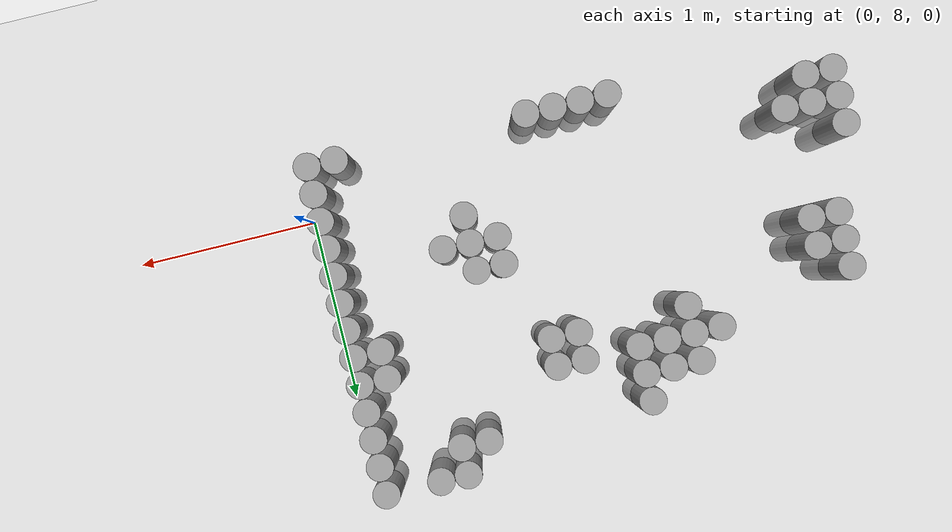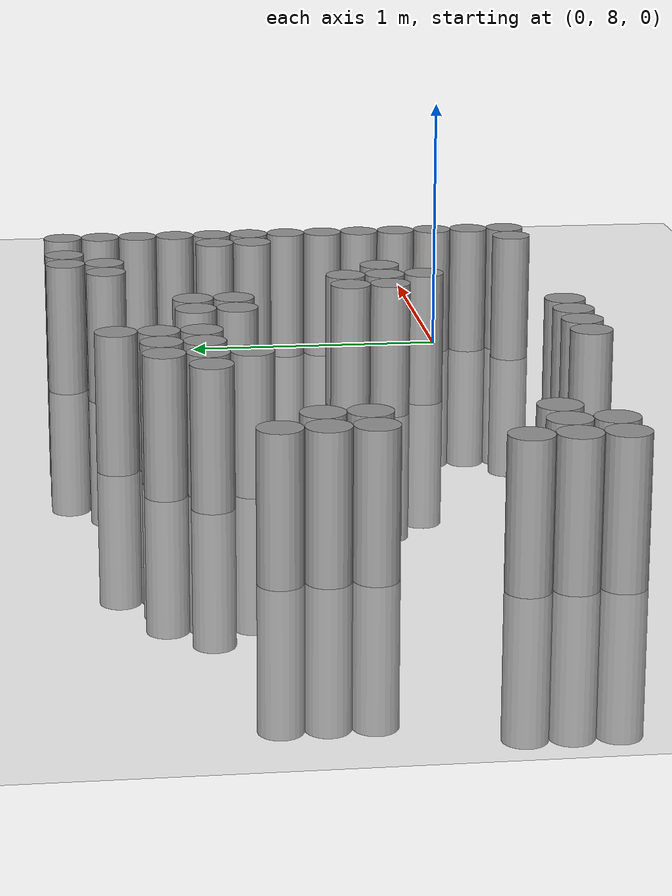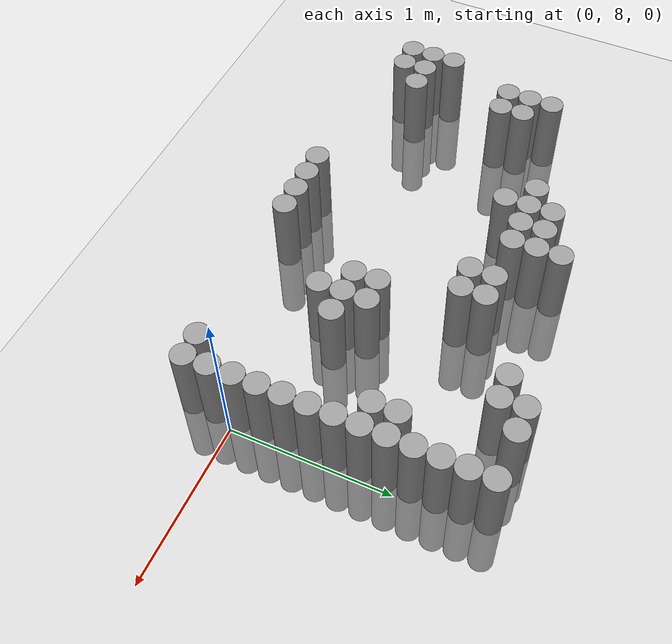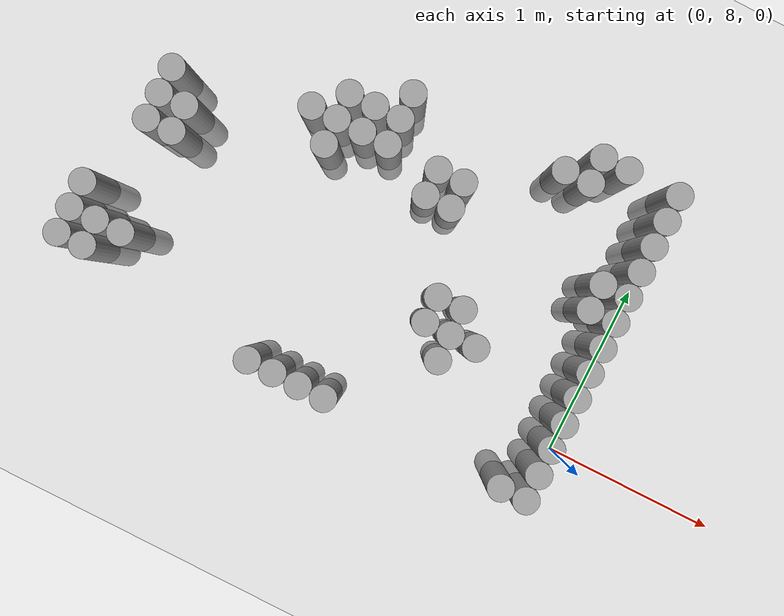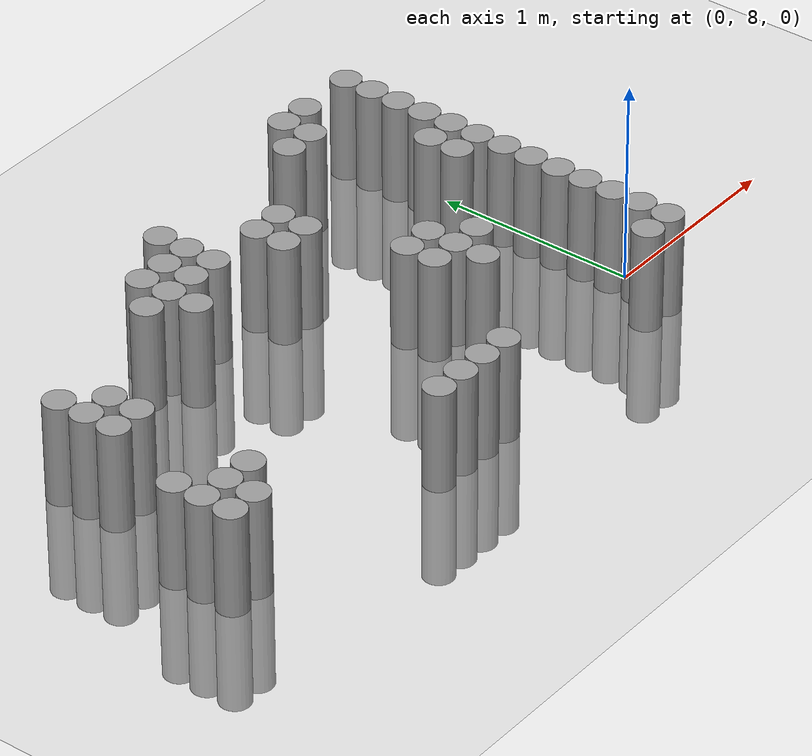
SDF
<sdf version="1.6">
 <world name="default">
  <model name="ground_plane">
   <static>1</static>
   <link name="link">
    <collision name="collision">
     <geometry><plane><normal>0 0 1</normal><size>100 100</size></plane></geometry>
     <surface><friction><ode><mu>100</mu><mu2>50</mu2></ode></friction></surface>
    </collision>
    <visual name="visual">
     <cast_shadows>0</cast_shadows>
     <geometry><plane><normal>0 0 1</normal><size>100 100</size></plane></geometry>
     <material>
      <script><uri>file://media/materials/scripts/gazebo.material</uri><name>Gazebo/Grey</name></script>
     </material>
    </visual>
   </link>
  </model>
  <model name="unit_cylinder_153">
   <pose>-2.925000 7.875000 0.000000 0.000000 0.000000 0.000000</pose>
   <link name="link">
    <inertial>
     <mass>1</mass>
     <inertia><ixx>0.145833</ixx><ixy>0</ixy><ixz>0</ixz><iyy>0.145833</iyy><iyz>0</iyz><izz>0.125</izz></inertia>
    </inertial>
    <collision name="collision">
     <geometry><cylinder><radius>0.075000</radius><length>1</length></cylinder></geometry>
    </collision>
    <visual name="visual">
     <geometry><cylinder><radius>0.075000</radius><length>1</length></cylinder></geometry>
     <material>
      <script><name>Gazebo/Grey</name><uri>file://media/materials/scripts/gazebo.material</uri></script>
     </material>
    </visual>
   </link>
  </model>
  <model name="unit_cylinder_154">
   <pose>-2.925000 8.025000 0.000000 0.000000 0.000000 0.000000</pose>
   <link name="link">
    <inertial>
     <mass>1</mass>
     <inertia><ixx>0.145833</ixx><ixy>0</ixy><ixz>0</ixz><iyy>0.145833</iyy><iyz>0</iyz><izz>0.125</izz></inertia>
    </inertial>
    <collision name="collision">
     <geometry><cylinder><radius>0.075000</radius><length>1</length></cylinder></geometry>
    </collision>
    <visual name="visual">
     <geometry><cylinder><radius>0.075000</radius><length>1</length></cylinder></geometry>
     <material>
      <script><name>Gazebo/Grey</name><uri>file://media/materials/scripts/gazebo.material</uri></script>
     </material>
    </visual>
   </link>
  </model>
  <model name="unit_cylinder_155">
   <pose>-2.925000 8.175000 0.000000 0.000000 0.000000 0.000000</pose>
   <link name="link">
    <inertial>
     <mass>1</mass>
     <inertia><ixx>0.145833</ixx><ixy>0</ixy><ixz>0</ixz><iyy>0.145833</iyy><iyz>0</iyz><izz>0.125</izz></inertia>
    </inertial>
    <collision name="collision">
     <geometry><cylinder><radius>0.075000</radius><length>1</length></cylinder></geometry>
    </collision>
    <visual name="visual">
     <geometry><cylinder><radius>0.075000</radius><length>1</length></cylinder></geometry>
     <material>
      <script><name>Gazebo/Grey</name><uri>file://media/materials/scripts/gazebo.material</uri></script>
     </material>
    </visual>
   </link>
  </model>
  <model name="unit_cylinder_158">
   <pose>-2.775000 7.875000 0.000000 0.000000 0.000000 0.000000</pose>
   <link name="link">
    <inertial>
     <mass>1</mass>
     <inertia><ixx>0.145833</ixx><ixy>0</ixy><ixz>0</ixz><iyy>0.145833</iyy><iyz>0</iyz><izz>0.125</izz></inertia>
    </inertial>
    <collision name="collision">
     <geometry><cylinder><radius>0.075000</radius><length>1</length></cylinder></geometry>
    </collision>
    <visual name="visual">
     <geometry><cylinder><radius>0.075000</radius><length>1</length></cylinder></geometry>
     <material>
      <script><name>Gazebo/Grey</name><uri>file://media/materials/scripts/gazebo.material</uri></script>
     </material>
    </visual>
   </link>
  </model>
  <model name="unit_cylinder_159">
   <pose>-2.775000 8.025000 0.000000 0.000000 0.000000 0.000000</pose>
   <link name="link">
    <inertial>
     <mass>1</mass>
     <inertia><ixx>0.145833</ixx><ixy>0</ixy><ixz>0</ixz><iyy>0.145833</iyy><iyz>0</iyz><izz>0.125</izz></inertia>
    </inertial>
    <collision name="collision">
     <geometry><cylinder><radius>0.075000</radius><length>1</length></cylinder></geometry>
    </collision>
    <visual name="visual">
     <geometry><cylinder><radius>0.075000</radius><length>1</length></cylinder></geometry>
     <material>
      <script><name>Gazebo/Grey</name><uri>file://media/materials/scripts/gazebo.material</uri></script>
     </material>
    </visual>
   </link>
  </model>
  <model name="unit_cylinder_160">
   <pose>-2.775000 8.625000 0.000000 0.000000 0.000000 0.000000</pose>
   <link name="link">
    <inertial>
     <mass>1</mass>
     <inertia><ixx>0.145833</ixx><ixy>0</ixy><ixz>0</ixz><iyy>0.145833</iyy><iyz>0</iyz><izz>0.125</izz></inertia>
    </inertial>
    <collision name="collision">
     <geometry><cylinder><radius>0.075000</radius><length>1</length></cylinder></geometry>
    </collision>
    <visual name="visual">
     <geometry><cylinder><radius>0.075000</radius><length>1</length></cylinder></geometry>
     <material>
      <script><name>Gazebo/Grey</name><uri>file://media/materials/scripts/gazebo.material</uri></script>
     </material>
    </visual>
   </link>
  </model>
  <model name="unit_cylinder_161">
   <pose>-2.775000 8.775000 0.000000 0.000000 0.000000 0.000000</pose>
   <link name="link">
    <inertial>
     <mass>1</mass>
     <inertia><ixx>0.145833</ixx><ixy>0</ixy><ixz>0</ixz><iyy>0.145833</iyy><iyz>0</iyz><izz>0.125</izz></inertia>
    </inertial>
    <collision name="collision">
     <geometry><cylinder><radius>0.075000</radius><length>1</length></cylinder></geometry>
    </collision>
    <visual name="visual">
     <geometry><cylinder><radius>0.075000</radius><length>1</length></cylinder></geometry>
     <material>
      <script><name>Gazebo/Grey</name><uri>file://media/materials/scripts/gazebo.material</uri></script>
     </material>
    </visual>
   </link>
  </model>
  <model name="unit_cylinder_162">
   <pose>-2.775000 8.925000 0.000000 0.000000 0.000000 0.000000</pose>
   <link name="link">
    <inertial>
     <mass>1</mass>
     <inertia><ixx>0.145833</ixx><ixy>0</ixy><ixz>0</ixz><iyy>0.145833</iyy><iyz>0</iyz><izz>0.125</izz></inertia>
    </inertial>
    <collision name="collision">
     <geometry><cylinder><radius>0.075000</radius><length>1</length></cylinder></geometry>
    </collision>
    <visual name="visual">
     <geometry><cylinder><radius>0.075000</radius><length>1</length></cylinder></geometry>
     <material>
      <script><name>Gazebo/Grey</name><uri>file://media/materials/scripts/gazebo.material</uri></script>
     </material>
    </visual>
   </link>
  </model>
  <model name="unit_cylinder_166">
   <pose>-2.625000 8.025000 0.000000 0.000000 0.000000 0.000000</pose>
   <link name="link">
    <inertial>
     <mass>1</mass>
     <inertia><ixx>0.145833</ixx><ixy>0</ixy><ixz>0</ixz><iyy>0.145833</iyy><iyz>0</iyz><izz>0.125</izz></inertia>
    </inertial>
    <collision name="collision">
     <geometry><cylinder><radius>0.075000</radius><length>1</length></cylinder></geometry>
    </collision>
    <visual name="visual">
     <geometry><cylinder><radius>0.075000</radius><length>1</length></cylinder></geometry>
     <material>
      <script><name>Gazebo/Grey</name><uri>file://media/materials/scripts/gazebo.material</uri></script>
     </material>
    </visual>
   </link>
  </model>
  <model name="unit_cylinder_167">
   <pose>-2.625000 8.625000 0.000000 0.000000 0.000000 0.000000</pose>
   <link name="link">
    <inertial>
     <mass>1</mass>
     <inertia><ixx>0.145833</ixx><ixy>0</ixy><ixz>0</ixz><iyy>0.145833</iyy><iyz>0</iyz><izz>0.125</izz></inertia>
    </inertial>
    <collision name="collision">
     <geometry><cylinder><radius>0.075000</radius><length>1</length></cylinder></geometry>
    </collision>
    <visual name="visual">
     <geometry><cylinder><radius>0.075000</radius><length>1</length></cylinder></geometry>
     <material>
      <script><name>Gazebo/Grey</name><uri>file://media/materials/scripts/gazebo.material</uri></script>
     </material>
    </visual>
   </link>
  </model>
  <model name="unit_cylinder_168">
   <pose>-2.625000 8.775000 0.000000 0.000000 0.000000 0.000000</pose>
   <link name="link">
    <inertial>
     <mass>1</mass>
     <inertia><ixx>0.145833</ixx><ixy>0</ixy><ixz>0</ixz><iyy>0.145833</iyy><iyz>0</iyz><izz>0.125</izz></inertia>
    </inertial>
    <collision name="collision">
     <geometry><cylinder><radius>0.075000</radius><length>1</length></cylinder></geometry>
    </collision>
    <visual name="visual">
     <geometry><cylinder><radius>0.075000</radius><length>1</length></cylinder></geometry>
     <material>
      <script><name>Gazebo/Grey</name><uri>file://media/materials/scripts/gazebo.material</uri></script>
     </material>
    </visual>
   </link>
  </model>
  <model name="unit_cylinder_179">
   <pose>-2.025000 9.075000 0.000000 0.000000 0.000000 0.000000</pose>
   <link name="link">
    <inertial>
     <mass>1</mass>
     <inertia><ixx>0.145833</ixx><ixy>0</ixy><ixz>0</ixz><iyy>0.145833</iyy><iyz>0</iyz><izz>0.125</izz></inertia>
    </inertial>
    <collision name="collision">
     <geometry><cylinder><radius>0.075000</radius><length>1</length></cylinder></geometry>
    </collision>
    <visual name="visual">
     <geometry><cylinder><radius>0.075000</radius><length>1</length></cylinder></geometry>
     <material>
      <script><name>Gazebo/Grey</name><uri>file://media/materials/scripts/gazebo.material</uri></script>
     </material>
    </visual>
   </link>
  </model>
  <model name="unit_cylinder_180">
   <pose>-1.875000 8.925000 0.000000 0.000000 0.000000 0.000000</pose>
   <link name="link">
    <inertial>
     <mass>1</mass>
     <inertia><ixx>0.145833</ixx><ixy>0</ixy><ixz>0</ixz><iyy>0.145833</iyy><iyz>0</iyz><izz>0.125</izz></inertia>
    </inertial>
    <collision name="collision">
     <geometry><cylinder><radius>0.075000</radius><length>1</length></cylinder></geometry>
    </collision>
    <visual name="visual">
     <geometry><cylinder><radius>0.075000</radius><length>1</length></cylinder></geometry>
     <material>
      <script><name>Gazebo/Grey</name><uri>file://media/materials/scripts/gazebo.material</uri></script>
     </material>
    </visual>
   </link>
  </model>
  <model name="unit_cylinder_181">
   <pose>-1.875000 9.075000 0.000000 0.000000 0.000000 0.000000</pose>
   <link name="link">
    <inertial>
     <mass>1</mass>
     <inertia><ixx>0.145833</ixx><ixy>0</ixy><ixz>0</ixz><iyy>0.145833</iyy><iyz>0</iyz><izz>0.125</izz></inertia>
    </inertial>
    <collision name="collision">
     <geometry><cylinder><radius>0.075000</radius><length>1</length></cylinder></geometry>
    </collision>
    <visual name="visual">
     <geometry><cylinder><radius>0.075000</radius><length>1</length></cylinder></geometry>
     <material>
      <script><name>Gazebo/Grey</name><uri>file://media/materials/scripts/gazebo.material</uri></script>
     </material>
    </visual>
   </link>
  </model>
  <model name="unit_cylinder_182">
   <pose>-1.875000 9.225000 0.000000 0.000000 0.000000 0.000000</pose>
   <link name="link">
    <inertial>
     <mass>1</mass>
     <inertia><ixx>0.145833</ixx><ixy>0</ixy><ixz>0</ixz><iyy>0.145833</iyy><iyz>0</iyz><izz>0.125</izz></inertia>
    </inertial>
    <collision name="collision">
     <geometry><cylinder><radius>0.075000</radius><length>1</length></cylinder></geometry>
    </collision>
    <visual name="visual">
     <geometry><cylinder><radius>0.075000</radius><length>1</length></cylinder></geometry>
     <material>
      <script><name>Gazebo/Grey</name><uri>file://media/materials/scripts/gazebo.material</uri></script>
     </material>
    </visual>
   </link>
  </model>
  <model name="unit_cylinder_183">
   <pose>-1.725000 7.725000 0.000000 0.000000 0.000000 0.000000</pose>
   <link name="link">
    <inertial>
     <mass>1</mass>
     <inertia><ixx>0.145833</ixx><ixy>0</ixy><ixz>0</ixz><iyy>0.145833</iyy><iyz>0</iyz><izz>0.125</izz></inertia>
    </inertial>
    <collision name="collision">
     <geometry><cylinder><radius>0.075000</radius><length>1</length></cylinder></geometry>
    </collision>
    <visual name="visual">
     <geometry><cylinder><radius>0.075000</radius><length>1</length></cylinder></geometry>
     <material>
      <script><name>Gazebo/Grey</name><uri>file://media/materials/scripts/gazebo.material</uri></script>
     </material>
    </visual>
   </link>
  </model>
  <model name="unit_cylinder_184">
   <pose>-1.725000 9.075000 0.000000 0.000000 0.000000 0.000000</pose>
   <link name="link">
    <inertial>
     <mass>1</mass>
     <inertia><ixx>0.145833</ixx><ixy>0</ixy><ixz>0</ixz><iyy>0.145833</iyy><iyz>0</iyz><izz>0.125</izz></inertia>
    </inertial>
    <collision name="collision">
     <geometry><cylinder><radius>0.075000</radius><length>1</length></cylinder></geometry>
    </collision>
    <visual name="visual">
     <geometry><cylinder><radius>0.075000</radius><length>1</length></cylinder></geometry>
     <material>
      <script><name>Gazebo/Grey</name><uri>file://media/materials/scripts/gazebo.material</uri></script>
     </material>
    </visual>
   </link>
  </model>
  <model name="unit_cylinder_185">
   <pose>-1.725000 9.225000 0.000000 0.000000 0.000000 0.000000</pose>
   <link name="link">
    <inertial>
     <mass>1</mass>
     <inertia><ixx>0.145833</ixx><ixy>0</ixy><ixz>0</ixz><iyy>0.145833</iyy><iyz>0</iyz><izz>0.125</izz></inertia>
    </inertial>
    <collision name="collision">
     <geometry><cylinder><radius>0.075000</radius><length>1</length></cylinder></geometry>
    </collision>
    <visual name="visual">
     <geometry><cylinder><radius>0.075000</radius><length>1</length></cylinder></geometry>
     <material>
      <script><name>Gazebo/Grey</name><uri>file://media/materials/scripts/gazebo.material</uri></script>
     </material>
    </visual>
   </link>
  </model>
  <model name="unit_cylinder_187">
   <pose>-1.575000 7.725000 0.000000 0.000000 0.000000 0.000000</pose>
   <link name="link">
    <inertial>
     <mass>1</mass>
     <inertia><ixx>0.145833</ixx><ixy>0</ixy><ixz>0</ixz><iyy>0.145833</iyy><iyz>0</iyz><izz>0.125</izz></inertia>
    </inertial>
    <collision name="collision">
     <geometry><cylinder><radius>0.075000</radius><length>1</length></cylinder></geometry>
    </collision>
    <visual name="visual">
     <geometry><cylinder><radius>0.075000</radius><length>1</length></cylinder></geometry>
     <material>
      <script><name>Gazebo/Grey</name><uri>file://media/materials/scripts/gazebo.material</uri></script>
     </material>
    </visual>
   </link>
  </model>
  <model name="unit_cylinder_188">
   <pose>-1.575000 9.075000 0.000000 0.000000 0.000000 0.000000</pose>
   <link name="link">
    <inertial>
     <mass>1</mass>
     <inertia><ixx>0.145833</ixx><ixy>0</ixy><ixz>0</ixz><iyy>0.145833</iyy><iyz>0</iyz><izz>0.125</izz></inertia>
    </inertial>
    <collision name="collision">
     <geometry><cylinder><radius>0.075000</radius><length>1</length></cylinder></geometry>
    </collision>
    <visual name="visual">
     <geometry><cylinder><radius>0.075000</radius><length>1</length></cylinder></geometry>
     <material>
      <script><name>Gazebo/Grey</name><uri>file://media/materials/scripts/gazebo.material</uri></script>
     </material>
    </visual>
   </link>
  </model>
  <model name="unit_cylinder_189">
   <pose>-1.575000 9.225000 0.000000 0.000000 0.000000 0.000000</pose>
   <link name="link">
    <inertial>
     <mass>1</mass>
     <inertia><ixx>0.145833</ixx><ixy>0</ixy><ixz>0</ixz><iyy>0.145833</iyy><iyz>0</iyz><izz>0.125</izz></inertia>
    </inertial>
    <collision name="collision">
     <geometry><cylinder><radius>0.075000</radius><length>1</length></cylinder></geometry>
    </collision>
    <visual name="visual">
     <geometry><cylinder><radius>0.075000</radius><length>1</length></cylinder></geometry>
     <material>
      <script><name>Gazebo/Grey</name><uri>file://media/materials/scripts/gazebo.material</uri></script>
     </material>
    </visual>
   </link>
  </model>
  <model name="unit_cylinder_190">
   <pose>-1.575000 9.375000 0.000000 0.000000 0.000000 0.000000</pose>
   <link name="link">
    <inertial>
     <mass>1</mass>
     <inertia><ixx>0.145833</ixx><ixy>0</ixy><ixz>0</ixz><iyy>0.145833</iyy><iyz>0</iyz><izz>0.125</izz></inertia>
    </inertial>
    <collision name="collision">
     <geometry><cylinder><radius>0.075000</radius><length>1</length></cylinder></geometry>
    </collision>
    <visual name="visual">
     <geometry><cylinder><radius>0.075000</radius><length>1</length></cylinder></geometry>
     <material>
      <script><name>Gazebo/Grey</name><uri>file://media/materials/scripts/gazebo.material</uri></script>
     </material>
    </visual>
   </link>
  </model>
  <model name="unit_cylinder_193">
   <pose>-1.425000 7.725000 0.000000 0.000000 0.000000 0.000000</pose>
   <link name="link">
    <inertial>
     <mass>1</mass>
     <inertia><ixx>0.145833</ixx><ixy>0</ixy><ixz>0</ixz><iyy>0.145833</iyy><iyz>0</iyz><izz>0.125</izz></inertia>
    </inertial>
    <collision name="collision">
     <geometry><cylinder><radius>0.075000</radius><length>1</length></cylinder></geometry>
    </collision>
    <visual name="visual">
     <geometry><cylinder><radius>0.075000</radius><length>1</length></cylinder></geometry>
     <material>
      <script><name>Gazebo/Grey</name><uri>file://media/materials/scripts/gazebo.material</uri></script>
     </material>
    </visual>
   </link>
  </model>
  <model name="unit_cylinder_198">
   <pose>-1.275000 7.725000 0.000000 0.000000 0.000000 0.000000</pose>
   <link name="link">
    <inertial>
     <mass>1</mass>
     <inertia><ixx>0.145833</ixx><ixy>0</ixy><ixz>0</ixz><iyy>0.145833</iyy><iyz>0</iyz><izz>0.125</izz></inertia>
    </inertial>
    <collision name="collision">
     <geometry><cylinder><radius>0.075000</radius><length>1</length></cylinder></geometry>
    </collision>
    <visual name="visual">
     <geometry><cylinder><radius>0.075000</radius><length>1</length></cylinder></geometry>
     <material>
      <script><name>Gazebo/Grey</name><uri>file://media/materials/scripts/gazebo.material</uri></script>
     </material>
    </visual>
   </link>
  </model>
  <model name="unit_cylinder_199">
   <pose>-1.275000 8.925000 0.000000 0.000000 0.000000 0.000000</pose>
   <link name="link">
    <inertial>
     <mass>1</mass>
     <inertia><ixx>0.145833</ixx><ixy>0</ixy><ixz>0</ixz><iyy>0.145833</iyy><iyz>0</iyz><izz>0.125</izz></inertia>
    </inertial>
    <collision name="collision">
     <geometry><cylinder><radius>0.075000</radius><length>1</length></cylinder></geometry>
    </collision>
    <visual name="visual">
     <geometry><cylinder><radius>0.075000</radius><length>1</length></cylinder></geometry>
     <material>
      <script><name>Gazebo/Grey</name><uri>file://media/materials/scripts/gazebo.material</uri></script>
     </material>
    </visual>
   </link>
  </model>
  <model name="unit_cylinder_200">
   <pose>-1.275000 9.075000 0.000000 0.000000 0.000000 0.000000</pose>
   <link name="link">
    <inertial>
     <mass>1</mass>
     <inertia><ixx>0.145833</ixx><ixy>0</ixy><ixz>0</ixz><iyy>0.145833</iyy><iyz>0</iyz><izz>0.125</izz></inertia>
    </inertial>
    <collision name="collision">
     <geometry><cylinder><radius>0.075000</radius><length>1</length></cylinder></geometry>
    </collision>
    <visual name="visual">
     <geometry><cylinder><radius>0.075000</radius><length>1</length></cylinder></geometry>
     <material>
      <script><name>Gazebo/Grey</name><uri>file://media/materials/scripts/gazebo.material</uri></script>
     </material>
    </visual>
   </link>
  </model>
  <model name="unit_cylinder_206">
   <pose>-1.125000 8.925000 0.000000 0.000000 0.000000 0.000000</pose>
   <link name="link">
    <inertial>
     <mass>1</mass>
     <inertia><ixx>0.145833</ixx><ixy>0</ixy><ixz>0</ixz><iyy>0.145833</iyy><iyz>0</iyz><izz>0.125</izz></inertia>
    </inertial>
    <collision name="collision">
     <geometry><cylinder><radius>0.075000</radius><length>1</length></cylinder></geometry>
    </collision>
    <visual name="visual">
     <geometry><cylinder><radius>0.075000</radius><length>1</length></cylinder></geometry>
     <material>
      <script><name>Gazebo/Grey</name><uri>file://media/materials/scripts/gazebo.material</uri></script>
     </material>
    </visual>
   </link>
  </model>
  <model name="unit_cylinder_207">
   <pose>-1.125000 9.075000 0.000000 0.000000 0.000000 0.000000</pose>
   <link name="link">
    <inertial>
     <mass>1</mass>
     <inertia><ixx>0.145833</ixx><ixy>0</ixy><ixz>0</ixz><iyy>0.145833</iyy><iyz>0</iyz><izz>0.125</izz></inertia>
    </inertial>
    <collision name="collision">
     <geometry><cylinder><radius>0.075000</radius><length>1</length></cylinder></geometry>
    </collision>
    <visual name="visual">
     <geometry><cylinder><radius>0.075000</radius><length>1</length></cylinder></geometry>
     <material>
      <script><name>Gazebo/Grey</name><uri>file://media/materials/scripts/gazebo.material</uri></script>
     </material>
    </visual>
   </link>
  </model>
  <model name="unit_cylinder_213">
   <pose>-0.975000 8.325000 0.000000 0.000000 0.000000 0.000000</pose>
   <link name="link">
    <inertial>
     <mass>1</mass>
     <inertia><ixx>0.145833</ixx><ixy>0</ixy><ixz>0</ixz><iyy>0.145833</iyy><iyz>0</iyz><izz>0.125</izz></inertia>
    </inertial>
    <collision name="collision">
     <geometry><cylinder><radius>0.075000</radius><length>1</length></cylinder></geometry>
    </collision>
    <visual name="visual">
     <geometry><cylinder><radius>0.075000</radius><length>1</length></cylinder></geometry>
     <material>
      <script><name>Gazebo/Grey</name><uri>file://media/materials/scripts/gazebo.material</uri></script>
     </material>
    </visual>
   </link>
  </model>
  <model name="unit_cylinder_214">
   <pose>-0.975000 8.475000 0.000000 0.000000 0.000000 0.000000</pose>
   <link name="link">
    <inertial>
     <mass>1</mass>
     <inertia><ixx>0.145833</ixx><ixy>0</ixy><ixz>0</ixz><iyy>0.145833</iyy><iyz>0</iyz><izz>0.125</izz></inertia>
    </inertial>
    <collision name="collision">
     <geometry><cylinder><radius>0.075000</radius><length>1</length></cylinder></geometry>
    </collision>
    <visual name="visual">
     <geometry><cylinder><radius>0.075000</radius><length>1</length></cylinder></geometry>
     <material>
      <script><name>Gazebo/Grey</name><uri>file://media/materials/scripts/gazebo.material</uri></script>
     </material>
    </visual>
   </link>
  </model>
  <model name="unit_cylinder_217">
   <pose>-0.825000 8.175000 0.000000 0.000000 0.000000 0.000000</pose>
   <link name="link">
    <inertial>
     <mass>1</mass>
     <inertia><ixx>0.145833</ixx><ixy>0</ixy><ixz>0</ixz><iyy>0.145833</iyy><iyz>0</iyz><izz>0.125</izz></inertia>
    </inertial>
    <collision name="collision">
     <geometry><cylinder><radius>0.075000</radius><length>1</length></cylinder></geometry>
    </collision>
    <visual name="visual">
     <geometry><cylinder><radius>0.075000</radius><length>1</length></cylinder></geometry>
     <material>
      <script><name>Gazebo/Grey</name><uri>file://media/materials/scripts/gazebo.material</uri></script>
     </material>
    </visual>
   </link>
  </model>
  <model name="unit_cylinder_218">
   <pose>-0.825000 8.325000 0.000000 0.000000 0.000000 0.000000</pose>
   <link name="link">
    <inertial>
     <mass>1</mass>
     <inertia><ixx>0.145833</ixx><ixy>0</ixy><ixz>0</ixz><iyy>0.145833</iyy><iyz>0</iyz><izz>0.125</izz></inertia>
    </inertial>
    <collision name="collision">
     <geometry><cylinder><radius>0.075000</radius><length>1</length></cylinder></geometry>
    </collision>
    <visual name="visual">
     <geometry><cylinder><radius>0.075000</radius><length>1</length></cylinder></geometry>
     <material>
      <script><name>Gazebo/Grey</name><uri>file://media/materials/scripts/gazebo.material</uri></script>
     </material>
    </visual>
   </link>
  </model>
  <model name="unit_cylinder_219">
   <pose>-0.825000 8.475000 0.000000 0.000000 0.000000 0.000000</pose>
   <link name="link">
    <inertial>
     <mass>1</mass>
     <inertia><ixx>0.145833</ixx><ixy>0</ixy><ixz>0</ixz><iyy>0.145833</iyy><iyz>0</iyz><izz>0.125</izz></inertia>
    </inertial>
    <collision name="collision">
     <geometry><cylinder><radius>0.075000</radius><length>1</length></cylinder></geometry>
    </collision>
    <visual name="visual">
     <geometry><cylinder><radius>0.075000</radius><length>1</length></cylinder></geometry>
     <material>
      <script><name>Gazebo/Grey</name><uri>file://media/materials/scripts/gazebo.material</uri></script>
     </material>
    </visual>
   </link>
  </model>
  <model name="unit_cylinder_221">
   <pose>-0.675000 8.325000 0.000000 0.000000 0.000000 0.000000</pose>
   <link name="link">
    <inertial>
     <mass>1</mass>
     <inertia><ixx>0.145833</ixx><ixy>0</ixy><ixz>0</ixz><iyy>0.145833</iyy><iyz>0</iyz><izz>0.125</izz></inertia>
    </inertial>
    <collision name="collision">
     <geometry><cylinder><radius>0.075000</radius><length>1</length></cylinder></geometry>
    </collision>
    <visual name="visual">
     <geometry><cylinder><radius>0.075000</radius><length>1</length></cylinder></geometry>
     <material>
      <script><name>Gazebo/Grey</name><uri>file://media/materials/scripts/gazebo.material</uri></script>
     </material>
    </visual>
   </link>
  </model>
  <model name="unit_cylinder_222">
   <pose>-0.675000 9.375000 0.000000 0.000000 0.000000 0.000000</pose>
   <link name="link">
    <inertial>
     <mass>1</mass>
     <inertia><ixx>0.145833</ixx><ixy>0</ixy><ixz>0</ixz><iyy>0.145833</iyy><iyz>0</iyz><izz>0.125</izz></inertia>
    </inertial>
    <collision name="collision">
     <geometry><cylinder><radius>0.075000</radius><length>1</length></cylinder></geometry>
    </collision>
    <visual name="visual">
     <geometry><cylinder><radius>0.075000</radius><length>1</length></cylinder></geometry>
     <material>
      <script><name>Gazebo/Grey</name><uri>file://media/materials/scripts/gazebo.material</uri></script>
     </material>
    </visual>
   </link>
  </model>
  <model name="unit_cylinder_225">
   <pose>-0.525000 9.375000 0.000000 0.000000 0.000000 0.000000</pose>
   <link name="link">
    <inertial>
     <mass>1</mass>
     <inertia><ixx>0.145833</ixx><ixy>0</ixy><ixz>0</ixz><iyy>0.145833</iyy><iyz>0</iyz><izz>0.125</izz></inertia>
    </inertial>
    <collision name="collision">
     <geometry><cylinder><radius>0.075000</radius><length>1</length></cylinder></geometry>
    </collision>
    <visual name="visual">
     <geometry><cylinder><radius>0.075000</radius><length>1</length></cylinder></geometry>
     <material>
      <script><name>Gazebo/Grey</name><uri>file://media/materials/scripts/gazebo.material</uri></script>
     </material>
    </visual>
   </link>
  </model>
  <model name="unit_cylinder_226">
   <pose>-0.525000 9.525000 0.000000 0.000000 0.000000 0.000000</pose>
   <link name="link">
    <inertial>
     <mass>1</mass>
     <inertia><ixx>0.145833</ixx><ixy>0</ixy><ixz>0</ixz><iyy>0.145833</iyy><iyz>0</iyz><izz>0.125</izz></inertia>
    </inertial>
    <collision name="collision">
     <geometry><cylinder><radius>0.075000</radius><length>1</length></cylinder></geometry>
    </collision>
    <visual name="visual">
     <geometry><cylinder><radius>0.075000</radius><length>1</length></cylinder></geometry>
     <material>
      <script><name>Gazebo/Grey</name><uri>file://media/materials/scripts/gazebo.material</uri></script>
     </material>
    </visual>
   </link>
  </model>
  <model name="unit_cylinder_228">
   <pose>-0.375000 9.525000 0.000000 0.000000 0.000000 0.000000</pose>
   <link name="link">
    <inertial>
     <mass>1</mass>
     <inertia><ixx>0.145833</ixx><ixy>0</ixy><ixz>0</ixz><iyy>0.145833</iyy><iyz>0</iyz><izz>0.125</izz></inertia>
    </inertial>
    <collision name="collision">
     <geometry><cylinder><radius>0.075000</radius><length>1</length></cylinder></geometry>
    </collision>
    <visual name="visual">
     <geometry><cylinder><radius>0.075000</radius><length>1</length></cylinder></geometry>
     <material>
      <script><name>Gazebo/Grey</name><uri>file://media/materials/scripts/gazebo.material</uri></script>
     </material>
    </visual>
   </link>
  </model>
  <model name="unit_cylinder_236">
   <pose>-0.225000 7.725000 0.000000 0.000000 0.000000 0.000000</pose>
   <link name="link">
    <inertial>
     <mass>1</mass>
     <inertia><ixx>0.145833</ixx><ixy>0</ixy><ixz>0</ixz><iyy>0.145833</iyy><iyz>0</iyz><izz>0.125</izz></inertia>
    </inertial>
    <collision name="collision">
     <geometry><cylinder><radius>0.075000</radius><length>1</length></cylinder></geometry>
    </collision>
    <visual name="visual">
     <geometry><cylinder><radius>0.075000</radius><length>1</length></cylinder></geometry>
     <material>
      <script><name>Gazebo/Grey</name><uri>file://media/materials/scripts/gazebo.material</uri></script>
     </material>
    </visual>
   </link>
  </model>
  <model name="unit_cylinder_237">
   <pose>-0.225000 8.775000 0.000000 0.000000 0.000000 0.000000</pose>
   <link name="link">
    <inertial>
     <mass>1</mass>
     <inertia><ixx>0.145833</ixx><ixy>0</ixy><ixz>0</ixz><iyy>0.145833</iyy><iyz>0</iyz><izz>0.125</izz></inertia>
    </inertial>
    <collision name="collision">
     <geometry><cylinder><radius>0.075000</radius><length>1</length></cylinder></geometry>
    </collision>
    <visual name="visual">
     <geometry><cylinder><radius>0.075000</radius><length>1</length></cylinder></geometry>
     <material>
      <script><name>Gazebo/Grey</name><uri>file://media/materials/scripts/gazebo.material</uri></script>
     </material>
    </visual>
   </link>
  </model>
  <model name="unit_cylinder_238">
   <pose>-0.225000 8.925000 0.000000 0.000000 0.000000 0.000000</pose>
   <link name="link">
    <inertial>
     <mass>1</mass>
     <inertia><ixx>0.145833</ixx><ixy>0</ixy><ixz>0</ixz><iyy>0.145833</iyy><iyz>0</iyz><izz>0.125</izz></inertia>
    </inertial>
    <collision name="collision">
     <geometry><cylinder><radius>0.075000</radius><length>1</length></cylinder></geometry>
    </collision>
    <visual name="visual">
     <geometry><cylinder><radius>0.075000</radius><length>1</length></cylinder></geometry>
     <material>
      <script><name>Gazebo/Grey</name><uri>file://media/materials/scripts/gazebo.material</uri></script>
     </material>
    </visual>
   </link>
  </model>
  <model name="unit_cylinder_256">
   <pose>-0.075000 7.725000 0.000000 0.000000 0.000000 0.000000</pose>
   <link name="link">
    <inertial>
     <mass>1</mass>
     <inertia><ixx>0.145833</ixx><ixy>0</ixy><ixz>0</ixz><iyy>0.145833</iyy><iyz>0</iyz><izz>0.125</izz></inertia>
    </inertial>
    <collision name="collision">
     <geometry><cylinder><radius>0.075000</radius><length>1</length></cylinder></geometry>
    </collision>
    <visual name="visual">
     <geometry><cylinder><radius>0.075000</radius><length>1</length></cylinder></geometry>
     <material>
      <script><name>Gazebo/Grey</name><uri>file://media/materials/scripts/gazebo.material</uri></script>
     </material>
    </visual>
   </link>
  </model>
  <model name="unit_cylinder_257">
   <pose>-0.075000 7.875000 0.000000 0.000000 0.000000 0.000000</pose>
   <link name="link">
    <inertial>
     <mass>1</mass>
     <inertia><ixx>0.145833</ixx><ixy>0</ixy><ixz>0</ixz><iyy>0.145833</iyy><iyz>0</iyz><izz>0.125</izz></inertia>
    </inertial>
    <collision name="collision">
     <geometry><cylinder><radius>0.075000</radius><length>1</length></cylinder></geometry>
    </collision>
    <visual name="visual">
     <geometry><cylinder><radius>0.075000</radius><length>1</length></cylinder></geometry>
     <material>
      <script><name>Gazebo/Grey</name><uri>file://media/materials/scripts/gazebo.material</uri></script>
     </material>
    </visual>
   </link>
  </model>
  <model name="unit_cylinder_258">
   <pose>-0.075000 8.025000 0.000000 0.000000 0.000000 0.000000</pose>
   <link name="link">
    <inertial>
     <mass>1</mass>
     <inertia><ixx>0.145833</ixx><ixy>0</ixy><ixz>0</ixz><iyy>0.145833</iyy><iyz>0</iyz><izz>0.125</izz></inertia>
    </inertial>
    <collision name="collision">
     <geometry><cylinder><radius>0.075000</radius><length>1</length></cylinder></geometry>
    </collision>
    <visual name="visual">
     <geometry><cylinder><radius>0.075000</radius><length>1</length></cylinder></geometry>
     <material>
      <script><name>Gazebo/Grey</name><uri>file://media/materials/scripts/gazebo.material</uri></script>
     </material>
    </visual>
   </link>
  </model>
  <model name="unit_cylinder_259">
   <pose>-0.075000 8.175000 0.000000 0.000000 0.000000 0.000000</pose>
   <link name="link">
    <inertial>
     <mass>1</mass>
     <inertia><ixx>0.145833</ixx><ixy>0</ixy><ixz>0</ixz><iyy>0.145833</iyy><iyz>0</iyz><izz>0.125</izz></inertia>
    </inertial>
    <collision name="collision">
     <geometry><cylinder><radius>0.075000</radius><length>1</length></cylinder></geometry>
    </collision>
    <visual name="visual">
     <geometry><cylinder><radius>0.075000</radius><length>1</length></cylinder></geometry>
     <material>
      <script><name>Gazebo/Grey</name><uri>file://media/materials/scripts/gazebo.material</uri></script>
     </material>
    </visual>
   </link>
  </model>
  <model name="unit_cylinder_260">
   <pose>-0.075000 8.325000 0.000000 0.000000 0.000000 0.000000</pose>
   <link name="link">
    <inertial>
     <mass>1</mass>
     <inertia><ixx>0.145833</ixx><ixy>0</ixy><ixz>0</ixz><iyy>0.145833</iyy><iyz>0</iyz><izz>0.125</izz></inertia>
    </inertial>
    <collision name="collision">
     <geometry><cylinder><radius>0.075000</radius><length>1</length></cylinder></geometry>
    </collision>
    <visual name="visual">
     <geometry><cylinder><radius>0.075000</radius><length>1</length></cylinder></geometry>
     <material>
      <script><name>Gazebo/Grey</name><uri>file://media/materials/scripts/gazebo.material</uri></script>
     </material>
    </visual>
   </link>
  </model>
  <model name="unit_cylinder_261">
   <pose>-0.075000 8.475000 0.000000 0.000000 0.000000 0.000000</pose>
   <link name="link">
    <inertial>
     <mass>1</mass>
     <inertia><ixx>0.145833</ixx><ixy>0</ixy><ixz>0</ixz><iyy>0.145833</iyy><iyz>0</iyz><izz>0.125</izz></inertia>
    </inertial>
    <collision name="collision">
     <geometry><cylinder><radius>0.075000</radius><length>1</length></cylinder></geometry>
    </collision>
    <visual name="visual">
     <geometry><cylinder><radius>0.075000</radius><length>1</length></cylinder></geometry>
     <material>
      <script><name>Gazebo/Grey</name><uri>file://media/materials/scripts/gazebo.material</uri></script>
     </material>
    </visual>
   </link>
  </model>
  <model name="unit_cylinder_262">
   <pose>-0.075000 8.625000 0.000000 0.000000 0.000000 0.000000</pose>
   <link name="link">
    <inertial>
     <mass>1</mass>
     <inertia><ixx>0.145833</ixx><ixy>0</ixy><ixz>0</ixz><iyy>0.145833</iyy><iyz>0</iyz><izz>0.125</izz></inertia>
    </inertial>
    <collision name="collision">
     <geometry><cylinder><radius>0.075000</radius><length>1</length></cylinder></geometry>
    </collision>
    <visual name="visual">
     <geometry><cylinder><radius>0.075000</radius><length>1</length></cylinder></geometry>
     <material>
      <script><name>Gazebo/Grey</name><uri>file://media/materials/scripts/gazebo.material</uri></script>
     </material>
    </visual>
   </link>
  </model>
  <model name="unit_cylinder_263">
   <pose>-0.075000 8.775000 0.000000 0.000000 0.000000 0.000000</pose>
   <link name="link">
    <inertial>
     <mass>1</mass>
     <inertia><ixx>0.145833</ixx><ixy>0</ixy><ixz>0</ixz><iyy>0.145833</iyy><iyz>0</iyz><izz>0.125</izz></inertia>
    </inertial>
    <collision name="collision">
     <geometry><cylinder><radius>0.075000</radius><length>1</length></cylinder></geometry>
    </collision>
    <visual name="visual">
     <geometry><cylinder><radius>0.075000</radius><length>1</length></cylinder></geometry>
     <material>
      <script><name>Gazebo/Grey</name><uri>file://media/materials/scripts/gazebo.material</uri></script>
     </material>
    </visual>
   </link>
  </model>
  <model name="unit_cylinder_264">
   <pose>-0.075000 8.925000 0.000000 0.000000 0.000000 0.000000</pose>
   <link name="link">
    <inertial>
     <mass>1</mass>
     <inertia><ixx>0.145833</ixx><ixy>0</ixy><ixz>0</ixz><iyy>0.145833</iyy><iyz>0</iyz><izz>0.125</izz></inertia>
    </inertial>
    <collision name="collision">
     <geometry><cylinder><radius>0.075000</radius><length>1</length></cylinder></geometry>
    </collision>
    <visual name="visual">
     <geometry><cylinder><radius>0.075000</radius><length>1</length></cylinder></geometry>
     <material>
      <script><name>Gazebo/Grey</name><uri>file://media/materials/scripts/gazebo.material</uri></script>
     </material>
    </visual>
   </link>
  </model>
  <model name="unit_cylinder_265">
   <pose>-0.075000 9.075000 0.000000 0.000000 0.000000 0.000000</pose>
   <link name="link">
    <inertial>
     <mass>1</mass>
     <inertia><ixx>0.145833</ixx><ixy>0</ixy><ixz>0</ixz><iyy>0.145833</iyy><iyz>0</iyz><izz>0.125</izz></inertia>
    </inertial>
    <collision name="collision">
     <geometry><cylinder><radius>0.075000</radius><length>1</length></cylinder></geometry>
    </collision>
    <visual name="visual">
     <geometry><cylinder><radius>0.075000</radius><length>1</length></cylinder></geometry>
     <material>
      <script><name>Gazebo/Grey</name><uri>file://media/materials/scripts/gazebo.material</uri></script>
     </material>
    </visual>
   </link>
  </model>
  <model name="unit_cylinder_266">
   <pose>-0.075000 9.225000 0.000000 0.000000 0.000000 0.000000</pose>
   <link name="link">
    <inertial>
     <mass>1</mass>
     <inertia><ixx>0.145833</ixx><ixy>0</ixy><ixz>0</ixz><iyy>0.145833</iyy><iyz>0</iyz><izz>0.125</izz></inertia>
    </inertial>
    <collision name="collision">
     <geometry><cylinder><radius>0.075000</radius><length>1</length></cylinder></geometry>
    </collision>
    <visual name="visual">
     <geometry><cylinder><radius>0.075000</radius><length>1</length></cylinder></geometry>
     <material>
      <script><name>Gazebo/Grey</name><uri>file://media/materials/scripts/gazebo.material</uri></script>
     </material>
    </visual>
   </link>
  </model>
  <model name="unit_cylinder_267">
   <pose>-0.075000 9.375000 0.000000 0.000000 0.000000 0.000000</pose>
   <link name="link">
    <inertial>
     <mass>1</mass>
     <inertia><ixx>0.145833</ixx><ixy>0</ixy><ixz>0</ixz><iyy>0.145833</iyy><iyz>0</iyz><izz>0.125</izz></inertia>
    </inertial>
    <collision name="collision">
     <geometry><cylinder><radius>0.075000</radius><length>1</length></cylinder></geometry>
    </collision>
    <visual name="visual">
     <geometry><cylinder><radius>0.075000</radius><length>1</length></cylinder></geometry>
     <material>
      <script><name>Gazebo/Grey</name><uri>file://media/materials/scripts/gazebo.material</uri></script>
     </material>
    </visual>
   </link>
  </model>
  <model name="unit_cylinder_268">
   <pose>-0.075000 9.525000 0.000000 0.000000 0.000000 0.000000</pose>
   <link name="link">
    <inertial>
     <mass>1</mass>
     <inertia><ixx>0.145833</ixx><ixy>0</ixy><ixz>0</ixz><iyy>0.145833</iyy><iyz>0</iyz><izz>0.125</izz></inertia>
    </inertial>
    <collision name="collision">
     <geometry><cylinder><radius>0.075000</radius><length>1</length></cylinder></geometry>
    </collision>
    <visual name="visual">
     <geometry><cylinder><radius>0.075000</radius><length>1</length></cylinder></geometry>
     <material>
      <script><name>Gazebo/Grey</name><uri>file://media/materials/scripts/gazebo.material</uri></script>
     </material>
    </visual>
   </link>
  </model>
 </world>
</sdf>
